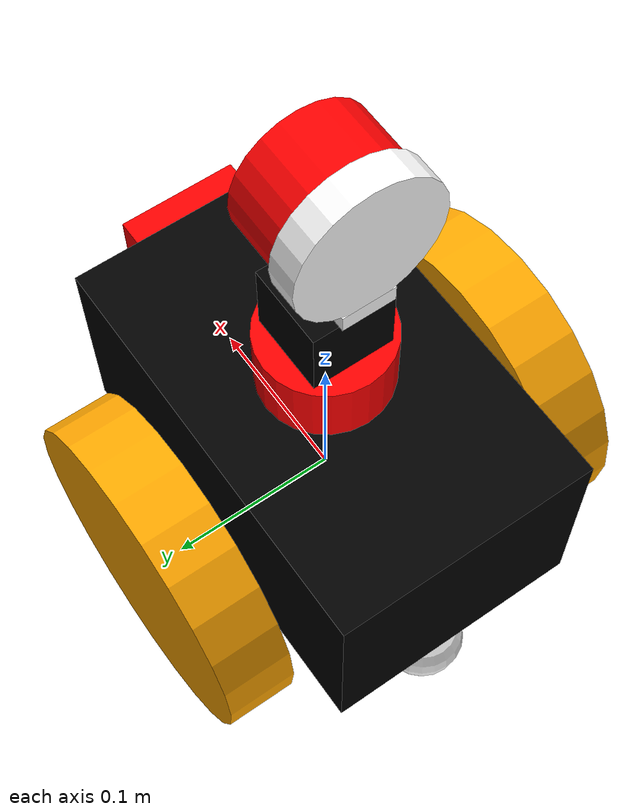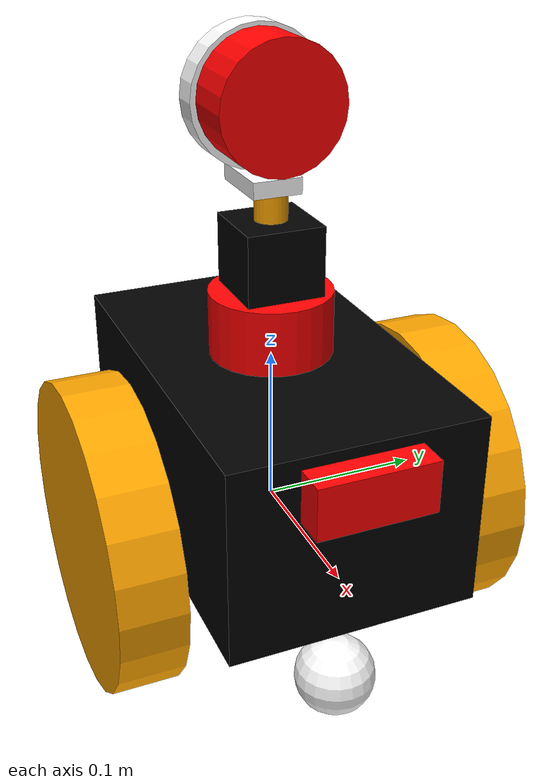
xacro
<?xml version = "1.0"?>
<robot xmlns:xacro = "http://www.ros.org/wiki/xacro"  name = "robot">

    <xacro:arg name="use_ros2_control" default="true"/>

    <xacro:arg name="sim_mode" default="false"/>

    <xacro:include filename = "robot_core.xacro"/>

    <xacro:if value="$(arg use_ros2_control)">
        <xacro:include filename = "ros2_control.xacro"/>
    </xacro:if>

    <xacro:unless value="$(arg use_ros2_control)">
        <xacro:include filename = "gazebo_control.xacro"/>
    </xacro:unless>

    <xacro:include filename = "lidar.xacro"/>

    <xacro:include filename = "lidar_3d.xacro"/>

    <xacro:include filename = "camera.xacro"/>

</robot>

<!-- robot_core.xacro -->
<robot xmlns:xacro = "http://www.ros.org/wiki/xacro">

    <xacro:include filename = "inertia_macros.xacro"/>

    <!-- Materials -->

    <material name = "white">
        <color rgba = "1 1 1 1"/>
    </material>

    <material name = "black">
        <color rgba = "0 0 0 1"/>
    </material>

    <material name = "orange">
        <color rgba = "1 0.65 0 1"/>
    </material>

    <material name = "blue">
        <color rgba = "0 0 1 1"/>
    </material>

    <material name = "red">
        <color rgba = "1 0 0 1"/>
    </material>

    <!-- Base Link -->

    <link name = "base_link">

    </link>

    <!-- Base Footprint Link -->

    <link name="base_footprint">

    </link>

    <!-- Base Footprint Joint -->

    <joint name="base_foorprint_joint" type="fixed">
        <parent link="base_link"/>
        <child link="base_footprint"/>
        <origin xyz="0 0 0" rpy="0 0 0"/>
    </joint>

    <!-- Chassis Link -->

    <link name = "chassis">
        <visual>
            <origin xyz = "0.125 0 0.0415"/>
            <geometry>
                <box size = "0.250 0.155 0.123"/>
            </geometry>
            <material name = "black"/>
        </visual>
        <collision>
            <origin xyz = "0.125 0 0.0415"/>
            <geometry>
                <box size = "0.250 0.155 0.123"/>
            </geometry>
        </collision>
        <xacro:inertial_box mass = "0.5" x = "0.250" y = "0.155" z = "0.123">
            <origin xyz = "0.125 0 0.0415" rpy = "0 0 0"/>
        </xacro:inertial_box>
    </link>

    <gazebo reference = "chassis">
        <material>
            Gazebo/Black
        </material>
    </gazebo>

    <!-- Chassis/Base Joint -->

    <joint name = "chassis_joint" type = "fixed">
        <parent link = "base_link"/>
        <child link = "chassis"/>
        <origin xyz = "-0.125 0 0"/>
    </joint>

    <!-- Stepper Link -->

    <link name="stepper_link">
        <visual>
            <origin xyz="0 0 0.0415"/>
            <geometry>
                <box size="0.048 0.048 0.043"/>
            </geometry>
            <material name="black"/>
        </visual>
        <collision>
            <origin xyz="0 0 0.0415"/>
            <geometry>
                <box size="0.048 0.048 0.043"/>
            </geometry>
        </collision>
        <xacro:inertial_box mass = "0.5" x = "0.048" y = "0.048" z = "0.043">
            <origin xyz = "0 0 0.0415" rpy = "0 0 0"/>
        </xacro:inertial_box>
    </link>

    <gazebo reference="stepper_link">
        <material>
            Gazebo/Black
        </material>
    </gazebo>

    <!-- Stepper Joint -->

    <joint name="stepper_joint" type="fixed">
        <parent link="base_link"/>
        <child link="stepper_link"/>
        <origin xyz="0 0 0.123"/>
    </joint>

    <!-- Shaft Link -->

    <link name="shaft_link">
        <visual>
            <origin xyz="0 0 0.018"/>
            <geometry>
                <cylinder radius="0.01" length="0.036"/>
            </geometry>
            <material name="orange"/>
        </visual>
        <collision>
            <origin xyz="0 0 0.018"/>
            <geometry>
                <cylinder radius="0.01" length="0.036"/>
            </geometry>
        </collision>
        <xacro:inertial_cylinder mass = "0.1" length = "0.036" radius = "0.01">
            <origin xyz = "0 0 0.018" rpy = "0 0 0"/>
        </xacro:inertial_cylinder>
    </link>

    <gazebo reference="shaft_link">
        <material>
            Gazebo/Orange
        </material>
    </gazebo>

    <!-- Shaft Joint -->

    <joint name="shaft_joint" type="fixed">
        <parent link="stepper_link"/>
        <child link="shaft_link"/>
        <origin xyz="0 0 0.043" rpy="0 0 0"/>
    </joint>

    <!-- Bracket Link -->

    <link name="bracket_link">
        <visual>
            <origin xyz="-0.012 0 0.005"/>
            <geometry>
                <box size="0.045 0.03 0.01"/>
            </geometry>
            <material name="white"/>
        </visual>
        <collision>
            <origin xyz="-0.012 0 0.005"/>
            <geometry>
                <box size="0.045 0.03 0.01"/>
            </geometry>
        </collision>
        <xacro:inertial_box mass = "0.1" x = "0.045" y = "0.03" z = "0.01">
            <origin xyz = "0 -0.012 0.005" rpy = "0 0 0"/>
        </xacro:inertial_box>
        <visual>
            <origin xyz="-0.0255 0 0.050" rpy="0 ${pi/2} 0"/>
            <geometry>
                <cylinder radius="0.0415" length="0.018"/>
            </geometry>
            <material name="white"/>
        </visual>
        <collision>
            <origin xyz="-0.0255 0 0.050" rpy="0 ${pi/2} 0"/>
            <geometry>
                <cylinder radius="0.0415" length="0.018"/>
            </geometry>
        </collision>
        <xacro:inertial_cylinder mass = "0.1" length = "0.018" radius = "0.0415">
            <origin xyz = "-0.0255 0 0.050" rpy="0 ${pi/2} 0"/>
        </xacro:inertial_cylinder>
    </link>

    <gazebo reference="bracket_link">
        <material>
            Gazebo/White
        </material>
    </gazebo>

    <!-- Bracket Joint -->

    <joint name="bracket_joint" type="fixed">
        <parent link="shaft_link"/>
        <child link="bracket_link"/>
        <origin xyz="0 0 0.036" rpy="0 0 0"/>
    </joint>

    <!-- Left Wheel Link -->

    <link name = "left_wheel">
        <visual>
            <origin xyz = "0 0 0"/>
            <geometry>
                <cylinder radius = "0.09704" length = "0.041"/>
            </geometry>
            <material name = "orange"/>
        </visual>
        <collision>
            <origin xyz = "0 0 0"/>
            <geometry>
                <sphere radius = "0.09704"/>
            </geometry>
        </collision>
        <xacro:inertial_cylinder mass = "0.1" length = "0.041" radius = "0.09704">
            <origin xyz = "0 0 0" rpy = "0 0 0"/>
        </xacro:inertial_cylinder>
    </link>

    <gazebo reference = "left_wheel">
        <material>
            Gazebo/Orange
        </material>
    </gazebo>

    <!-- Left Wheel Joint -->

    <joint name = "left_wheel_joint" type = "continuous">
        <parent link = "base_link"/>
        <child link = "left_wheel"/>
        <origin xyz = "0 0.110 0" rpy = "-${pi/2} 0 0"/>
        <axis xyz = " 0 0 1"/>
    </joint>

    <!-- Right Wheel Link -->

    <link name = "right_wheel">
        <visual>
            <origin xyz = "0 0 0"/>
            <geometry>
                <cylinder radius = "0.09704" length = "0.041"/>
            </geometry>
            <material name = "orange"/>
        </visual>
        <collision>
            <origin xyz = "0 0 0"/>
            <geometry>
                <sphere radius = "0.09704"/>
            </geometry>
        </collision>
        <xacro:inertial_cylinder mass = "0.1" length = "0.041" radius = "0.09704">
            <origin xyz = "0 0 0" rpy = "0 0 0"/>
        </xacro:inertial_cylinder>
    </link>

    <gazebo reference = "right_wheel">
        <material>
            Gazebo/Orange
        </material>
    </gazebo>

    <!-- Right Wheel Joint -->

    <joint name = "right_wheel_joint" type = "continuous">
        <parent link = "base_link"/>
        <child link = "right_wheel"/>
        <origin xyz = "0 -0.110 0" rpy = "${pi/2} 0 0"/>
        <axis xyz = " 0 0 -1"/>
    </joint>

    <!-- Caster Back Wheel Link -->

    <link name = "caster_back">
        <visual>
            <origin xyz = "0 0 0"/>
            <geometry>
                <sphere radius = "0.025"/>
            </geometry>
            <material name = "white"/>
        </visual>
        <collision>
            <geometry>
                <sphere radius = "0.025"/>
            </geometry>
        </collision>
        <xacro:inertial_sphere mass = "0.1" radius = "0.025">
            <origin xyz = "0 0 0" rpy = "0 0 0"/>
        </xacro:inertial_sphere>
    </link>

    <gazebo reference = "caster_back">
        <material>
            Gazebo/White
        </material>
        <mu1 value = "0.001"/>
        <mu2 value = "0.001"/>
    </gazebo>

    <!-- Caster Back Wheel Joint -->

    <joint name = "caster_back_wheel" type = "fixed">
        <parent link = "chassis"/>
        <child link = "caster_back"/>
        <origin xyz = "0.025 0 -0.07204"/>
    </joint>

    <!-- Caster Front Wheel Link -->

    <link name = "caster_front">
        <visual>
            <origin xyz = "0 0 0"/>
            <geometry>
                <sphere radius = "0.025"/>
            </geometry>
            <material name = "white"/>
        </visual>
        <collision>
            <geometry>
                <sphere radius = "0.025"/>
            </geometry>
        </collision>
        <xacro:inertial_sphere mass = "0.1" radius = "0.025">
            <origin xyz = "0 0 0" rpy = "0 0 0"/>
        </xacro:inertial_sphere>
    </link>

    <gazebo reference = "caster_front">
        <material>
            Gazebo/White
        </material>
        <mu1 value = "0.001"/>
        <mu2 value = "0.001"/>
    </gazebo>

    <!-- Caster Front Wheel Joint -->

    <joint name = "caster_front_wheel" type = "fixed">
        <parent link = "chassis"/>
        <child link = "caster_front"/>
        <origin xyz = "0.225 0 -0.07204"/>
    </joint>

</robot>

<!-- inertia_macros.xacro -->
<robot xmlns:xacro = "http://www.ros.org/wiki/xacro">

    <!-- Specify some standard inertial calculations https://en.wikipedia.org/wiki/List_of_moments_of_inertia -->
    <!-- These make use of xacro's mathematical functionality -->

    <xacro:macro name = "inertial_sphere" params = "mass radius *origin">
        <inertial>
            <xacro:insert_block name = "origin"/>
            <mass value = "${mass}"/>
            <inertia ixx = "${(2/5) * mass * (radius*radius)}" ixy = "0.0" ixz = "0.0"
                    iyy = "${(2/5) * mass * (radius*radius)}" iyz = "0.0"
                    izz = "${(2/5) * mass * (radius*radius)}"/>
        </inertial>
    </xacro:macro>

    <xacro:macro name = "inertial_box" params = "mass x y z *origin">
        <inertial>
            <xacro:insert_block name = "origin"/>
            <mass value = "${mass}"/>
            <inertia ixx = "${(1/12) * mass * (y*y+z*z)}" ixy = "0.0" ixz = "0.0"
                    iyy = "${(1/12) * mass * (x*x+z*z)}" iyz = "0.0"
                    izz = "${(1/12) * mass * (x*x+y*y)}"/>
        </inertial>
    </xacro:macro>

    <xacro:macro name = "inertial_cylinder" params = "mass length radius *origin">
        <inertial>
            <xacro:insert_block name = "origin"/>
            <mass value = "${mass}"/>
            <inertia ixx = "${(1/12) * mass * (3*radius*radius + length*length)}" ixy = "0.0" ixz = "0.0"
                    iyy = "${(1/12) * mass * (3*radius*radius + length*length)}" iyz = "0.0"
                    izz = "${(1/2) * mass * (radius*radius)}"/>
        </inertial>
    </xacro:macro>

</robot>

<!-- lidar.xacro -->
<robot xmlns:xacro = "http://www.ros.org/wiki/xacro">

    <!-- Lidar Link -->

    <link name = "laser_frame">
        <visual>
            <origin xyz = "0 0 0" rpy = "0 0 0"/>
            <geometry>
                <cylinder radius = "0.038" length = "0.04"/>
            </geometry>
            <material name = "red"/>
        </visual>
        <collision>
            <origin xyz = "0 0 0" rpy = "0 0 0"/>
            <geometry>
                <cylinder radius = "0.038" length = "0.04"/>
            </geometry>
        </collision>
        <xacro:inertial_cylinder mass = "0.1" length = "0.04" radius = "0.038">
            <origin xyz = "0 0 0" rpy = "0 0 0"/>
        </xacro:inertial_cylinder>
    </link>

    <gazebo reference = "laser_frame">
        <material>
            Gazebo/Red
        </material>
        <sensor name = "laser" type = "ray">
            <pose> 0 0 0 0 0 0 </pose>
            <visualize>true</visualize>
            <update_rate>10</update_rate>
            <ray>
                <scan>
                    <horizontal>
                        <samples>360</samples>
                        <min_angle>-3.14</min_angle>
                        <max_angle>3.14</max_angle>
                    </horizontal>
                </scan>
                <range>
                    <min>0.3</min>
                    <max>12</max>
                </range>
            </ray>
            <plugin name = "laser_controller" filename = "libgazebo_ros_ray_sensor.so">
                <ros>
                    <argument>~/out:=scan</argument>
                </ros>
                <output_type>sensor_msgs/LaserScan</output_type>
                <frame_name>laser_frame</frame_name>
            </plugin>
        </sensor>
    </gazebo>

    <!-- Lidar Joint -->

    <joint name = "laser_joint" type = "fixed">
        <parent link = "chassis"/>
        <child link = "laser_frame"/>
        <origin xyz = "0.125 0 0.123" rpy = "0 0 0"/>
    </joint>

</robot>

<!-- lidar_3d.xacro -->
<robot xmlns:xacro = "http://www.ros.org/wiki/xacro">

    <!-- Lidar Link -->

    <link name = "laser_3d_frame">
        <visual>
            <origin xyz = "0 0 0" rpy = "0 0 0"/>
            <geometry>
                <cylinder radius = "0.038" length = "0.04"/>
            </geometry>
            <material name = "red"/>
        </visual>
        <collision>
            <origin xyz = "0 0 0" rpy = "0 0 0"/>
            <geometry>
                <cylinder radius = "0.038" length = "0.04"/>
            </geometry>
        </collision>
        <xacro:inertial_cylinder mass = "0.1" length = "0.04" radius = "0.038">
            <origin xyz = "0 0 0" rpy = "0 0 0"/>
        </xacro:inertial_cylinder>
    </link>

    <gazebo reference = "laser_3d_frame">
        <material>
            Gazebo/Red
        </material>
        <sensor name = "laser_3d" type = "ray">
            <pose> 0 0 0 0 0 0 </pose>
            <visualize>false</visualize>
            <update_rate>10</update_rate>
            <ray>
                <scan>
                    <horizontal>
                        <samples>360</samples>
                        <min_angle>-3.14</min_angle>
                        <max_angle>3.14</max_angle>
                    </horizontal>
                </scan>
                <range>
                    <min>0.3</min>
                    <max>12</max>
                </range>
            </ray>
            <plugin name = "laser_3d_controller" filename = "libgazebo_ros_ray_sensor.so">
                <ros>
                    <argument>~/out:=scan_3d</argument>
                </ros>
                <output_type>sensor_msgs/LaserScan</output_type>
                <frame_name>laser_3d_frame</frame_name>
            </plugin>
        </sensor>
    </gazebo>

    <!-- Lidar Joint -->

    <joint name = "laser_3d_joint" type = "fixed">
        <parent link = "bracket_link"/>
        <child link = "laser_3d_frame"/>
        <origin xyz = "0 0 0.051" rpy = "0 ${pi/2} 0"/>
    </joint>

</robot>

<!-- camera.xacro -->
<robot xmlns:xacro = "http://www.ros.org/wiki/xacro">

    <!-- Camera Link -->

    <link name = "camera_link">
        <visual>
            <origin xyz = "0 0 0" rpy = "0 0 0"/>
            <geometry>
                <box size = "0.020 0.072 0.032"/>
            </geometry>
            <material name = "red"/>
        </visual>
    </link>

    <gazebo reference = "camera_link">
        <material>
            Gazebo/Red
        </material>
        <sensor name = "camera" type = "camera">
            <pose> 0 0 0 0 0 0 </pose>
            <visualize>true</visualize>
            <update_rate>10</update_rate>
            <camera>
                <horizontal_fov>1.089</horizontal_fov>
                <image>
                    <format>R8G8B8</format>
                    <width>640</width>
                    <height>480</height>
                </image>
                <clip>
                    <near>0.05</near>
                    <far>8.0</far>
                </clip>
            </camera>
            <plugin name = "camera_controller" filename = "libgazebo_ros_camera.so">
                <frame_name>camera_link_optical</frame_name>
            </plugin>
        </sensor>
    </gazebo>

    <!-- Camera Joint -->

    <joint name = "camera_joint" type = "fixed">
        <parent link = "chassis"/>
        <child link = "camera_link"/>
        <origin xyz = "0.260 0 0.080" rpy = "0 0 0"/>
    </joint>

    <!-- Camera Optical Link -->

    <link name = "camera_link_optical"></link>

    <!-- Camera Optical Joint -->

    <joint name = "camera_optical_joint" type = "fixed">
        <parent link = "camera_link"/>
        <child link = "camera_link_optical"/>
        <origin xyz = "0 0 0" rpy = "${-pi/2} 0 ${-pi/2}"/>
    </joint>

</robot>
